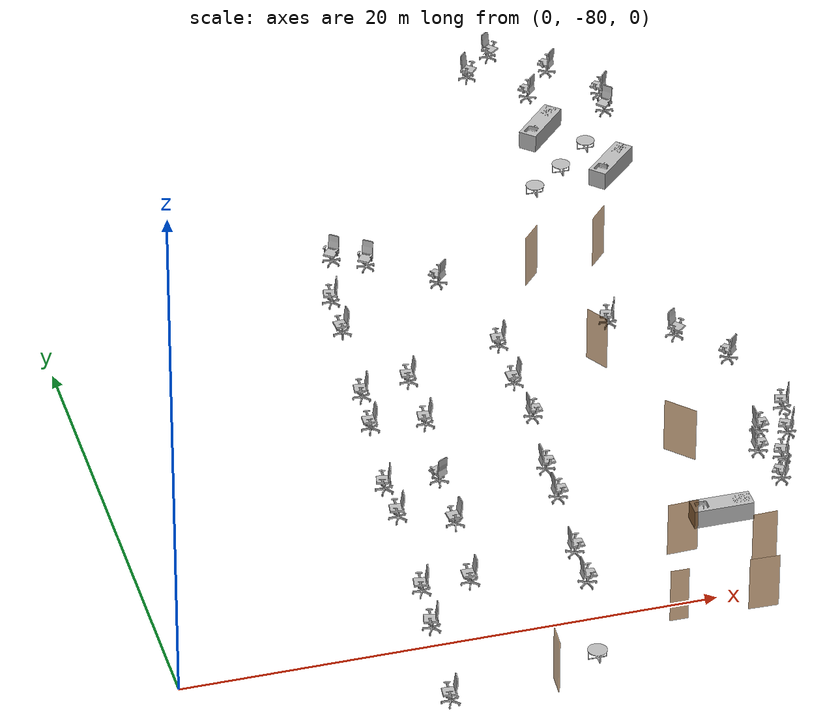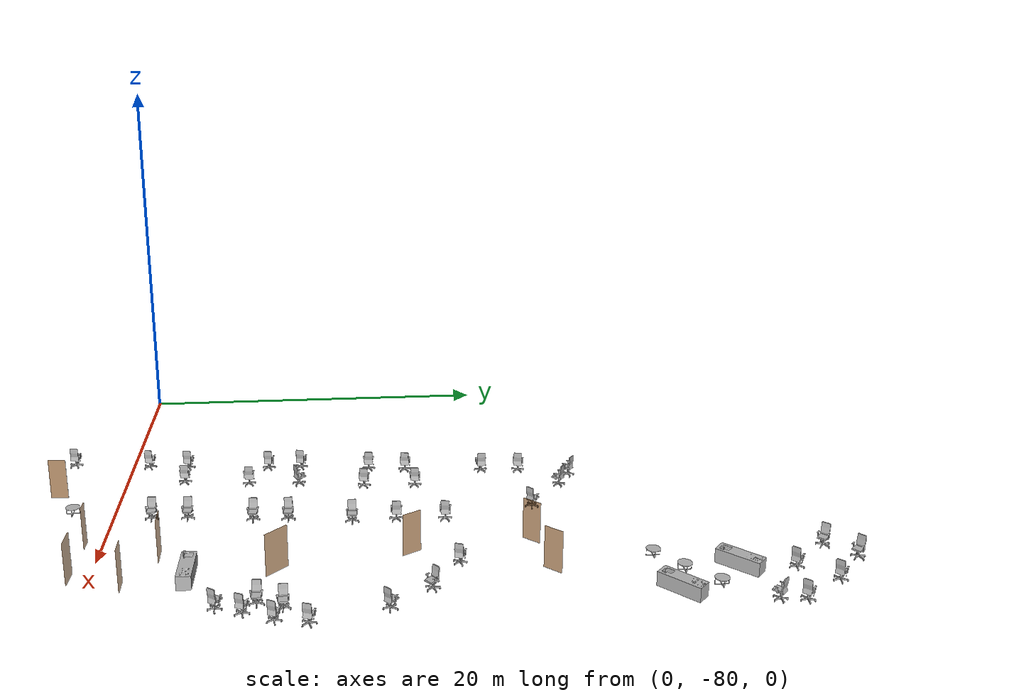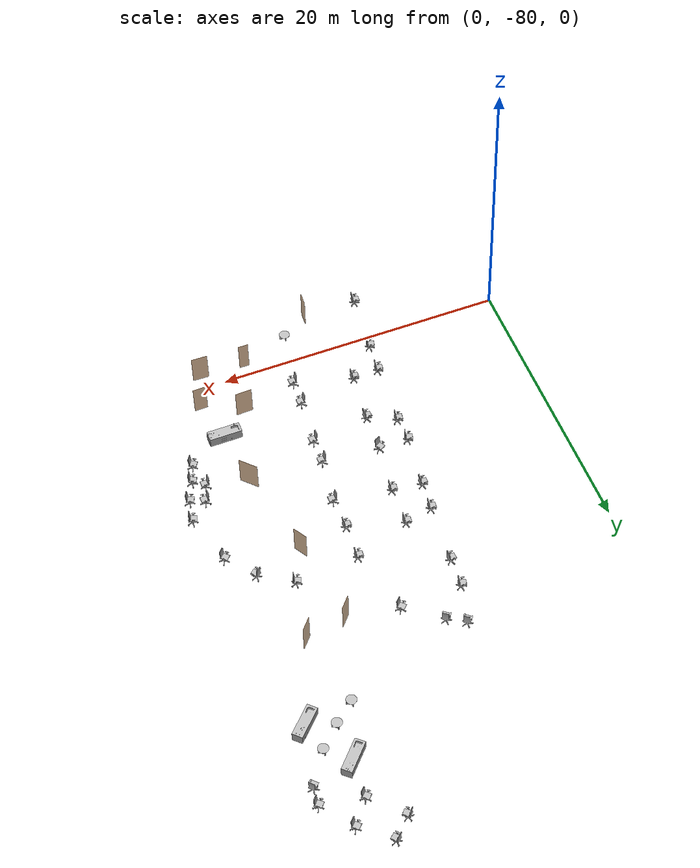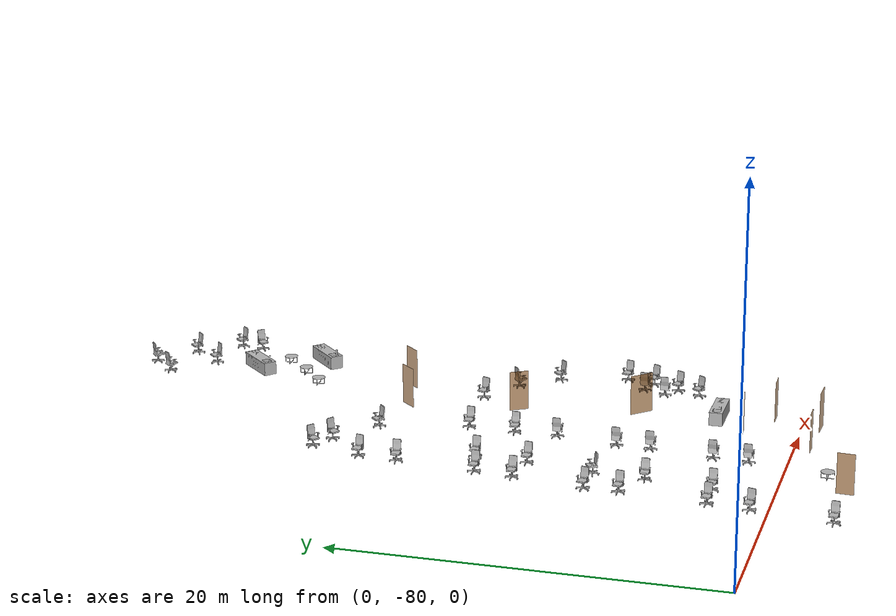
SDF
<sdf version="1.7">
 <world name="world">
  <include><uri>model://sun</uri></include>
  <include>
   <name>OpenRobotics/OfficeChairBlue_38</name>
   <uri>model://OfficeChairBlue</uri>
   <pose>8.93928116223458 -83.33729992286894 0.0 0 0 -1.6802</pose>
   <static>True</static>
  </include>
  <include>
   <name>OpenRobotics/OfficeChairBlue_39</name>
   <uri>model://OfficeChairBlue</uri>
   <pose>9.451008220213621 -79.06531083046865 0.0 0 0 -1.7928</pose>
   <static>True</static>
  </include>
  <include>
   <name>OpenRobotics/OfficeChairBlue_40</name>
   <uri>model://OfficeChairBlue</uri>
   <pose>9.6948588498605 -76.8704306234721 0.0 0 0 -1.7484</pose>
   <static>True</static>
  </include>
  <include>
   <name>OpenRobotics/OfficeChairBlue_41</name>
   <uri>model://OfficeChairBlue</uri>
   <pose>11.52093182002924 -76.82900296125308 0.0 0 0 -1.6118</pose>
   <static>True</static>
  </include>
  <include>
   <name>OpenRobotics/OfficeChairBlue_42</name>
   <uri>model://OfficeChairBlue</uri>
   <pose>15.831205012203736 -77.99504008810045 0.0 0 0 1.5708</pose>
   <static>True</static>
  </include>
  <include>
   <name>OpenRobotics/OfficeChairBlue_43</name>
   <uri>model://OfficeChairBlue</uri>
   <pose>15.9213578923172 -76.1274271856254 0.0 0 0 1.5708</pose>
   <static>True</static>
  </include>
  <include>
   <name>OpenRobotics/OfficeChairBlue_44</name>
   <uri>model://OfficeChairBlue</uri>
   <pose>16.307791532853372 -72.72710305113412 0.0 0 0 1.5708</pose>
   <static>True</static>
  </include>
  <include>
   <name>OpenRobotics/OfficeChairBlue_45</name>
   <uri>model://OfficeChairBlue</uri>
   <pose>16.372234562971837 -70.8981110586952 0.0 0 0 1.5708</pose>
   <static>True</static>
  </include>
  <include>
   <name>OpenRobotics/OfficeChairBlue_46</name>
   <uri>model://OfficeChairBlue</uri>
   <pose>16.84870881353416 -67.58793980431739 0.0 0 0 1.5708</pose>
   <static>True</static>
  </include>
  <include>
   <name>OpenRobotics/OfficeChairBlue_47</name>
   <uri>model://OfficeChairBlue</uri>
   <pose>16.552540323198766 -65.29527235127001 0.0 0 0 -1.5886</pose>
   <static>True</static>
  </include>
  <include>
   <name>OpenRobotics/OfficeChairBlue_48</name>
   <uri>model://OfficeChairBlue</uri>
   <pose>16.69422517338954 -62.74494504783607 0.0 0 0 -1.6735</pose>
   <static>True</static>
  </include>
  <include>
   <name>OpenRobotics/OfficeChairBlue_49</name>
   <uri>model://OfficeChairBlue</uri>
   <pose>10.55417409816493 -66.64217658878087 0.0 0 0 -1.6208</pose>
   <static>True</static>
  </include>
  <include>
   <name>OpenRobotics/OfficeChairBlue_50</name>
   <uri>model://OfficeChairBlue</uri>
   <pose>10.779724703579562 -64.57775422324367 0.0 0 0 -1.7139</pose>
   <static>True</static>
  </include>
  <include>
   <name>OpenRobotics/OfficeChairBlue_51</name>
   <uri>model://OfficeChairBlue</uri>
   <pose>12.740072698176325 -64.12676528250172 0.0 0 0 -1.6673</pose>
   <static>True</static>
  </include>
  <include>
   <name>OpenRobotics/OfficeChairBlue_52</name>
   <uri>model://OfficeChairBlue</uri>
   <pose>12.618596463702142 -66.9198205147094 0.0 0 0 -1.6967</pose>
   <static>True</static>
  </include>
  <include>
   <name>OpenRobotics/OfficeChairBlue_53</name>
   <uri>model://OfficeChairBlue</uri>
   <pose>11.161330730361213 -60.31003139416133 0.0 0 0 -1.5084</pose>
   <static>True</static>
  </include>
  <include>
   <name>OpenRobotics/OfficeChairBlue_54</name>
   <uri>model://OfficeChairBlue</uri>
   <pose>11.300096558281812 -58.17622611466382 0.0 0 0 -1.7682</pose>
   <static>True</static>
  </include>
  <include>
   <name>OpenRobotics/OfficeChairBlue_55</name>
   <uri>model://OfficeChairBlue</uri>
   <pose>15.637090031237138 -57.9461847057566 0.0 0 0 -2.362</pose>
   <static>True</static>
  </include>
  <include>
   <name>OpenRobotics/OfficeChairBlue_56</name>
   <uri>model://OfficeChairBlue</uri>
   <pose>12.082394526688562 -55.5644870734689 0.0 0 0 -0.6947</pose>
   <static>True</static>
  </include>
  <include>
   <name>OpenRobotics/OfficeChairBlue_57</name>
   <uri>model://OfficeChairBlue</uri>
   <pose>13.267293028204753 -56.287281895599016 0.0 0 0 -0.6288</pose>
   <static>True</static>
  </include>
  <include>
   <name>OpenRobotics/OfficeChairBlue_58</name>
   <uri>model://OfficeChairBlue</uri>
   <pose>10.051091836909096 -72.29778223724385 0.0 0 0 -1.7127</pose>
   <static>True</static>
  </include>
  <include>
   <name>OpenRobotics/OfficeChairBlue_59</name>
   <uri>model://OfficeChairBlue</uri>
   <pose>10.051091836909096 -70.45891047712126 0.0 0 0 -1.8116</pose>
   <static>True</static>
  </include>
  <include>
   <name>OpenRobotics/OfficeChairBlue_60</name>
   <uri>model://OfficeChairBlue</uri>
   <pose>12.18489711640661 -70.40681715660739 0.0 0 0 -2.6591</pose>
   <static>True</static>
  </include>
  <include>
   <name>OpenRobotics/OfficeChairBlue_61</name>
   <uri>model://OfficeChairBlue</uri>
   <pose>11.959346510991976 -73.2866571663091 0.0 0 0 -1.4995</pose>
   <static>True</static>
  </include>
  <include>
   <name>OpenRobotics/OfficeChairBlue_67</name>
   <uri>model://OfficeChairBlue</uri>
   <pose>25.83570476287736 -69.47362819085008 0.0 0 0 -1.8991</pose>
   <static>True</static>
  </include>
  <include>
   <name>OpenRobotics/OfficeChairBlue_68</name>
   <uri>model://OfficeChairBlue</uri>
   <pose>24.745225404792574 -70.70534331877639 0.0 0 0 1.5708</pose>
   <static>True</static>
  </include>
  <include>
   <name>OpenRobotics/OfficeChairBlue_69</name>
   <uri>model://OfficeChairBlue</uri>
   <pose>24.32140582518071 -71.9294240807653 0.0 0 0 1.5708</pose>
   <static>True</static>
  </include>
  <include>
   <name>OpenRobotics/OfficeChairBlue_70</name>
   <uri>model://OfficeChairBlue</uri>
   <pose>21.15269488081905 -62.34189543437736 0.0 0 0 -1.9224</pose>
   <static>True</static>
  </include>
  <include>
   <name>OpenRobotics/OfficeChairBlue_71</name>
   <uri>model://OfficeChairBlue</uri>
   <pose>23.56841034956302 -63.94870492402107 0.0 0 0 0.6892</pose>
   <static>True</static>
  </include>
  <include>
   <name>OpenRobotics/OfficeChairBlue_72</name>
   <uri>model://OfficeChairBlue</uri>
   <pose>24.898137263714794 -65.77713556602342 0.0 0 0 -2.3463</pose>
   <static>True</static>
  </include>
  <include>
   <name>OpenRobotics/KitchenCountertop</name>
   <uri>model://KitchenCountertop</uri>
   <pose>22.525758048674177 -48.948859908380484 0.0 0 0 2.3925</pose>
   <static>True</static>
  </include>
  <include>
   <name>OpenRobotics/OfficeChairBlue_109</name>
   <uri>model://OfficeChairBlue</uri>
   <pose>25.41255880378938 -48.10346615090304 0.0 0 0 -0.8184</pose>
   <static>True</static>
  </include>
  <include>
   <name>OpenRobotics/OfficeChairBlue_110</name>
   <uri>model://OfficeChairBlue</uri>
   <pose>25.554468194154783 -46.698855088512566 0.0 0 0 -2.2809</pose>
   <static>True</static>
  </include>
  <include>
   <name>OpenRobotics/OfficeChairBlue_120</name>
   <uri>model://OfficeChairBlue</uri>
   <pose>23.991444038563685 -44.511946057715335 0.0 0 0 -2.3243</pose>
   <static>True</static>
  </include>
  <include>
   <name>OpenRobotics/OfficeChairBlue_121</name>
   <uri>model://OfficeChairBlue</uri>
   <pose>22.699552143836872 -46.1455880982272 0.0 0 0 -2.3439</pose>
   <static>True</static>
  </include>
  <include>
   <name>OpenRobotics/OfficeChairBlue_122</name>
   <uri>model://OfficeChairBlue</uri>
   <pose>20.955885417756903 -44.23396532152488 0.0 0 0 0.8653</pose>
   <static>True</static>
  </include>
  <include>
   <name>OpenRobotics/OfficeChairBlue_123</name>
   <uri>model://OfficeChairBlue</uri>
   <pose>22.195571721882523 -42.98844097285891 0.0 0 0 0.6967</pose>
   <static>True</static>
  </include>
  <include>
   <name>OpenRobotics/CoffeeTable</name>
   <uri>model://CoffeeTable</uri>
   <pose>24.00738639096233 -50.27510644982551 0.0 0 0 1.5708</pose>
   <static>True</static>
  </include>
  <include>
   <name>OpenRobotics/CoffeeTable_2</name>
   <uri>model://CoffeeTable</uri>
   <pose>21.154378932128765 -52.84272334670587 0.0 0 0 1.5708</pose>
   <static>True</static>
  </include>
  <include>
   <name>OpenRobotics/KitchenCountertop_2</name>
   <uri>model://KitchenCountertop</uri>
   <pose>24.442882059654895 -52.30214287628702 0.0 0 0 2.3562</pose>
   <static>True</static>
  </include>
  <include>
   <name>OpenRobotics/CoffeeTable_4</name>
   <uri>model://CoffeeTable</uri>
   <pose>22.580882661545548 -51.6564776041419 0.0 0 0 1.5708</pose>
   <static>True</static>
  </include>
  <include>
   <name>OpenRobotics/CoffeeTable_5</name>
   <uri>model://CoffeeTable</uri>
   <pose>14.803596903015022 -82.23918619884677 0.0 0 0 1.5708</pose>
   <static>True</static>
  </include>
  <include>
   <name>OpenRobotics/OfficeChairBlue_238</name>
   <uri>model://OfficeChairBlue</uri>
   <pose>24.39202371010147 -73.73034855137561 0.0 0 0 -2.1648</pose>
   <static>True</static>
  </include>
  <include>
   <name>OpenRobotics/OfficeChairBlue_239</name>
   <uri>model://OfficeChairBlue</uri>
   <pose>24.839307737962045 -72.49447943021869 0.0 0 0 -2.0055</pose>
   <static>True</static>
  </include>
  <include>
   <name>OpenRobotics/OfficeChairBlue_240</name>
   <uri>model://OfficeChairBlue</uri>
   <pose>25.51023377975291 -71.01139157679543 0.0 0 0 -2.0411</pose>
   <static>True</static>
  </include>
  <include>
   <name>OpenRobotics/KitchenCountertop_3</name>
   <uri>model://KitchenCountertop</uri>
   <pose>21.632874044262742 -75.42001336545735 0.0 0 0 1.5708</pose>
   <static>True</static>
  </include>
  <model name="door_14">
   <pose>18.286327281595067 -80.86140768732444 0.0 0 0 -0.00740488719160208</pose>
   <link name="right">
    <pose>0 0 1.11 0 0 0</pose>
    <visual name="right_visual">
     <geometry><box><size>0.6874409034730617 0.03 2.2</size></box></geometry>
     <material><ambient>0.5 0.25 0 0.6</ambient><diffuse>0.5 0.25 0 0.6</diffuse></material>
    </visual>
    <collision name="right_collision">
     <geometry><box><size>0.6874409034730617 0.03 2.2</size></box></geometry>
     <surface><contact><collide_bitmask>0x02</collide_bitmask></contact></surface>
    </collision>
    <inertial>
     <mass>50.0</mass>
     <inertia><ixx>20.17041666666667</ixx><iyy>22.135729149032752</iyy><izz>1.9728124823660809</izz></inertia>
    </inertial>
   </link>
   <joint name="right_joint" type="revolute">
    <parent>world</parent>
    <child>right</child>
    <axis><xyz>0 0 -1</xyz><limit><lower>0</lower><upper>1.57</upper></limit></axis>
    <pose>0.3487204517365309 0 0 0 0 0</pose>
   </joint>
   <plugin name="door" filename="libdoor.so">
    <v_max_door>0.5</v_max_door>
    <a_max_door>0.3</a_max_door>
    <a_nom_door>0.15</a_nom_door>
    <dx_min_door>0.01</dx_min_door>
    <f_max_door>500.0</f_max_door>
    <door name="door_14" type="SwingDoor" left_joint_name="empty_joint" right_joint_name="right_joint"/>
   </plugin>
  </model>
  <model name="door_15">
   <pose>22.304361436490176 -78.39820197164647 0.0 0 0 0.02628457614848116</pose>
   <link name="right">
    <pose>0 0 1.11 0 0 0</pose>
    <visual name="right_visual">
     <geometry><box><size>0.9298007162193858 0.03 2.2</size></box></geometry>
     <material><ambient>0.5 0.25 0 0.6</ambient><diffuse>0.5 0.25 0 0.6</diffuse></material>
    </visual>
    <collision name="right_collision">
     <geometry><box><size>0.9298007162193858 0.03 2.2</size></box></geometry>
     <surface><contact><collide_bitmask>0x02</collide_bitmask></contact></surface>
    </collision>
    <inertial>
     <mass>50.0</mass>
     <inertia><ixx>20.17041666666667</ixx><iyy>23.768872382842016</iyy><izz>3.6059557161753446</izz></inertia>
    </inertial>
   </link>
   <joint name="right_joint" type="revolute">
    <parent>world</parent>
    <child>right</child>
    <axis><xyz>0 0 -1</xyz><limit><lower>0</lower><upper>1.57</upper></limit></axis>
    <pose>0.4699003581096929 0 0 0 0 0</pose>
   </joint>
   <plugin name="door" filename="libdoor.so">
    <v_max_door>0.5</v_max_door>
    <a_max_door>0.3</a_max_door>
    <a_nom_door>0.15</a_nom_door>
    <dx_min_door>0.01</dx_min_door>
    <f_max_door>500.0</f_max_door>
    <door name="door_15" type="SwingDoor" left_joint_name="empty_joint" right_joint_name="right_joint"/>
   </plugin>
  </model>
  <model name="door_16">
   <pose>19.623239481334956 -77.00706331973373 0.0 0 0 0.03751847835580803</pose>
   <link name="right">
    <pose>0 0 1.11 0 0 0</pose>
    <visual name="right_visual">
     <geometry><box><size>1.157307683114473 0.03 2.2</size></box></geometry>
     <material><ambient>0.5 0.25 0 0.6</ambient><diffuse>0.5 0.25 0 0.6</diffuse></material>
    </visual>
    <collision name="right_collision">
     <geometry><box><size>1.157307683114473 0.03 2.2</size></box></geometry>
     <surface><contact><collide_bitmask>0x02</collide_bitmask></contact></surface>
    </collision>
    <inertial>
     <mass>50.0</mass>
     <inertia><ixx>20.17041666666667</ixx><iyy>25.747337805815796</iyy><izz>5.584421139149124</izz></inertia>
    </inertial>
   </link>
   <joint name="right_joint" type="revolute">
    <parent>world</parent>
    <child>right</child>
    <axis><xyz>0 0 -1</xyz><limit><lower>0</lower><upper>1.57</upper></limit></axis>
    <pose>0.5836538415572365 0 0 0 0 0</pose>
   </joint>
   <plugin name="door" filename="libdoor.so">
    <v_max_door>0.5</v_max_door>
    <a_max_door>0.3</a_max_door>
    <a_nom_door>0.15</a_nom_door>
    <dx_min_door>0.01</dx_min_door>
    <f_max_door>500.0</f_max_door>
    <door name="door_16" type="SwingDoor" left_joint_name="empty_joint" right_joint_name="right_joint"/>
   </plugin>
  </model>
  <model name="door_17">
   <pose>21.359496381652175 -71.18159302916408 0.0 0 0 -0.8215326084566574</pose>
   <link name="right">
    <pose>0 0 1.11 0 0 0</pose>
    <visual name="right_visual">
     <geometry><box><size>1.3568239233732269 0.03 2.2</size></box></geometry>
     <material><ambient>0.5 0.25 0 0.6</ambient><diffuse>0.5 0.25 0 0.6</diffuse></material>
    </visual>
    <collision name="right_collision">
     <geometry><box><size>1.3568239233732269 0.03 2.2</size></box></geometry>
     <surface><contact><collide_bitmask>0x02</collide_bitmask></contact></surface>
    </collision>
    <inertial>
     <mass>50.0</mass>
     <inertia><ixx>20.17041666666667</ixx><iyy>27.837379829324654</iyy><izz>7.674463162657985</izz></inertia>
    </inertial>
   </link>
   <joint name="right_joint" type="revolute">
    <parent>world</parent>
    <child>right</child>
    <axis><xyz>0 0 -1</xyz><limit><lower>0</lower><upper>1.57</upper></limit></axis>
    <pose>0.6834119616866134 0 0 0 0 0</pose>
   </joint>
   <plugin name="door" filename="libdoor.so">
    <v_max_door>0.5</v_max_door>
    <a_max_door>0.3</a_max_door>
    <a_nom_door>0.15</a_nom_door>
    <dx_min_door>0.01</dx_min_door>
    <f_max_door>500.0</f_max_door>
    <door name="door_17" type="SwingDoor" left_joint_name="empty_joint" right_joint_name="right_joint"/>
   </plugin>
  </model>
  <model name="door_18">
   <pose>20.115768354383235 -64.65454696296672 0.0 0 0 2.0952310065969835</pose>
   <link name="right">
    <pose>0 0 1.11 0 0 0</pose>
    <visual name="right_visual">
     <geometry><box><size>1.037983841596549 0.03 2.2</size></box></geometry>
     <material><ambient>0.5 0.25 0 0.6</ambient><diffuse>0.5 0.25 0 0.6</diffuse></material>
    </visual>
    <collision name="right_collision">
     <geometry><box><size>1.037983841596549 0.03 2.2</size></box></geometry>
     <surface><contact><collide_bitmask>0x02</collide_bitmask></contact></surface>
    </collision>
    <inertial>
     <mass>50.0</mass>
     <inertia><ixx>20.17041666666667</ixx><iyy>24.655876897564713</iyy><izz>4.49296023089804</izz></inertia>
    </inertial>
   </link>
   <joint name="right_joint" type="revolute">
    <parent>world</parent>
    <child>right</child>
    <axis><xyz>0 0 -1</xyz><limit><lower>0</lower><upper>1.57</upper></limit></axis>
    <pose>0.5239919207982745 0 0 0 0 0</pose>
   </joint>
   <plugin name="door" filename="libdoor.so">
    <v_max_door>0.5</v_max_door>
    <a_max_door>0.3</a_max_door>
    <a_nom_door>0.15</a_nom_door>
    <dx_min_door>0.01</dx_min_door>
    <f_max_door>500.0</f_max_door>
    <door name="door_18" type="SwingDoor" left_joint_name="empty_joint" right_joint_name="right_joint"/>
   </plugin>
  </model>
  <model name="door_19">
   <pose>22.188330301250744 -57.98912801415437 0.0 0 0 -2.2895953695394557</pose>
   <link name="right">
    <pose>0 0 1.11 0 0 0</pose>
    <visual name="right_visual">
     <geometry><box><size>1.0135026017922288 0.03 2.2</size></box></geometry>
     <material><ambient>0.5 0.25 0 0.6</ambient><diffuse>0.5 0.25 0 0.6</diffuse></material>
    </visual>
    <collision name="right_collision">
     <geometry><box><size>1.0135026017922288 0.03 2.2</size></box></geometry>
     <surface><contact><collide_bitmask>0x02</collide_bitmask></contact></surface>
    </collision>
    <inertial>
     <mass>50.0</mass>
     <inertia><ixx>20.17041666666667</ixx><iyy>24.44661468266508</iyy><izz>4.283698015998405</izz></inertia>
    </inertial>
   </link>
   <joint name="right_joint" type="revolute">
    <parent>world</parent>
    <child>right</child>
    <axis><xyz>0 0 -1</xyz><limit><lower>0</lower><upper>1.57</upper></limit></axis>
    <pose>0.5117513008961144 0 0 0 0 0</pose>
   </joint>
   <plugin name="door" filename="libdoor.so">
    <v_max_door>0.5</v_max_door>
    <a_max_door>0.3</a_max_door>
    <a_nom_door>0.15</a_nom_door>
    <dx_min_door>0.01</dx_min_door>
    <f_max_door>500.0</f_max_door>
    <door name="door_19" type="SwingDoor" left_joint_name="empty_joint" right_joint_name="right_joint"/>
   </plugin>
  </model>
  <model name="door_20">
   <pose>19.29973322473851 -58.60537852342311 0.0 0 0 0.8519972840503258</pose>
   <link name="right">
    <pose>0 0 1.11 0 0 0</pose>
    <visual name="right_visual">
     <geometry><box><size>1.0135026017922206 0.03 2.2</size></box></geometry>
     <material><ambient>0.5 0.25 0 0.6</ambient><diffuse>0.5 0.25 0 0.6</diffuse></material>
    </visual>
    <collision name="right_collision">
     <geometry><box><size>1.0135026017922206 0.03 2.2</size></box></geometry>
     <surface><contact><collide_bitmask>0x02</collide_bitmask></contact></surface>
    </collision>
    <inertial>
     <mass>50.0</mass>
     <inertia><ixx>20.17041666666667</ixx><iyy>24.446614682665007</iyy><izz>4.283698015998335</izz></inertia>
    </inertial>
   </link>
   <joint name="right_joint" type="revolute">
    <parent>world</parent>
    <child>right</child>
    <axis><xyz>0 0 -1</xyz><limit><lower>0</lower><upper>1.57</upper></limit></axis>
    <pose>0.5117513008961103 0 0 0 0 0</pose>
   </joint>
   <plugin name="door" filename="libdoor.so">
    <v_max_door>0.5</v_max_door>
    <a_max_door>0.3</a_max_door>
    <a_nom_door>0.15</a_nom_door>
    <dx_min_door>0.01</dx_min_door>
    <f_max_door>500.0</f_max_door>
    <door name="door_20" type="SwingDoor" left_joint_name="empty_joint" right_joint_name="right_joint"/>
   </plugin>
  </model>
  <model name="door_65">
   <pose>21.45183852846827 -80.96172101033986 0.0 0 0 3.1112325734772255</pose>
   <link name="right">
    <pose>0 0 1.11 0 0 0</pose>
    <visual name="right_visual">
     <geometry><box><size>1.118048327477608 0.03 2.2</size></box></geometry>
     <material><ambient>0.5 0.25 0 0.6</ambient><diffuse>0.5 0.25 0 0.6</diffuse></material>
    </visual>
    <collision name="right_collision">
     <geometry><box><size>1.118048327477608 0.03 2.2</size></box></geometry>
     <surface><contact><collide_bitmask>0x02</collide_bitmask></contact></surface>
    </collision>
    <inertial>
     <mass>50.0</mass>
     <inertia><ixx>20.17041666666667</ixx><iyy>25.375133594064494</iyy><izz>5.2122169273978205</izz></inertia>
    </inertial>
   </link>
   <joint name="right_joint" type="revolute">
    <parent>world</parent>
    <child>right</child>
    <axis><xyz>0 0 -1</xyz><limit><lower>0</lower><upper>1.57</upper></limit></axis>
    <pose>0.564024163738804 0 0 0 0 0</pose>
   </joint>
   <plugin name="door" filename="libdoor.so">
    <v_max_door>0.5</v_max_door>
    <a_max_door>0.3</a_max_door>
    <a_nom_door>0.15</a_nom_door>
    <dx_min_door>0.01</dx_min_door>
    <f_max_door>500.0</f_max_door>
    <door name="door_65" type="SwingDoor" left_joint_name="empty_joint" right_joint_name="right_joint"/>
   </plugin>
  </model>
  <model name="door_63">
   <pose>12.945302417787051 -83.3580698890221 0.0 0 0 -1.643526680285971</pose>
   <link name="right">
    <pose>0 0 1.11 0 0 0</pose>
    <visual name="right_visual">
     <geometry><box><size>0.9231860752573183 0.03 2.2</size></box></geometry>
     <material><ambient>0.5 0.25 0 0.6</ambient><diffuse>0.5 0.25 0 0.6</diffuse></material>
    </visual>
    <collision name="right_collision">
     <geometry><box><size>0.9231860752573183 0.03 2.2</size></box></geometry>
     <surface><contact><collide_bitmask>0x02</collide_bitmask></contact></surface>
    </collision>
    <inertial>
     <mass>50.0</mass>
     <inertia><ixx>20.17041666666667</ixx><iyy>23.717802206454216</iyy><izz>3.5548855397875463</izz></inertia>
    </inertial>
   </link>
   <joint name="right_joint" type="revolute">
    <parent>world</parent>
    <child>right</child>
    <axis><xyz>0 0 -1</xyz><limit><lower>0</lower><upper>1.57</upper></limit></axis>
    <pose>0.46659303762865917 0 0 0 0 0</pose>
   </joint>
   <plugin name="door" filename="libdoor.so">
    <v_max_door>0.5</v_max_door>
    <a_max_door>0.3</a_max_door>
    <a_nom_door>0.15</a_nom_door>
    <dx_min_door>0.01</dx_min_door>
    <f_max_door>500.0</f_max_door>
    <door name="door_63" type="SwingDoor" left_joint_name="empty_joint" right_joint_name="right_joint"/>
   </plugin>
  </model>
 </world>
</sdf>
